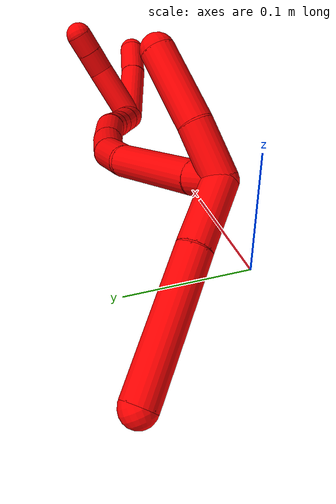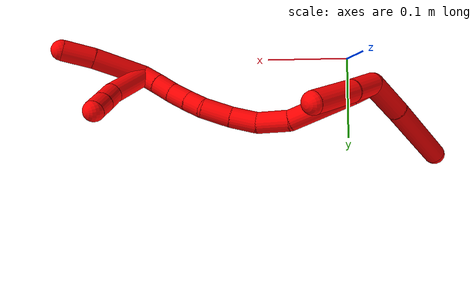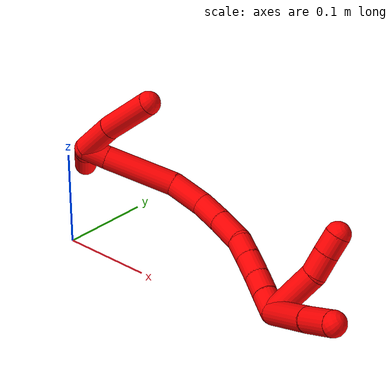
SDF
<sdf version="1.7">
 <world name="default">
  <model name="photoneo_s_sensor">
   <static>1</static>
   <pose>0 0 2 1.57079 1.57079 3.14159</pose>
   <link name="link">
    <inertial><mass>0.1</mass></inertial>
    <sensor name="sensor" type="depth">
     <update_rate>30</update_rate>
     <camera>
      <horizontal_fov>1.22</horizontal_fov>
      <image><width>1920</width><height>1200</height><format>B8G8R8</format></image>
      <clip><near>0.1</near><far>4</far></clip>
      <depth_camera><output>points</output></depth_camera>
     </camera>
     <plugin name="camera_plugin" filename="libgazebo_ros_depth_camera.so">
      <baseline>0.2</baseline>
      <alwaysOn>1</alwaysOn>
      <updateRate>0.0</updateRate>
      <cameraName>camera_ir</cameraName>
      <imageTopicName>/camera/color/image_raw</imageTopicName>
      <cameraInfoTopicName>/camera/color/camera_info</cameraInfoTopicName>
      <depthImageTopicName>/camera/depth/image_raw</depthImageTopicName>
      <depthImageCameraInfoTopicName>/camera/depth/camera_info</depthImageCameraInfoTopicName>
      <pointCloudTopicName>/camera/depth/points</pointCloudTopicName>
      <frameName>fr_optical</frameName>
      <pointCloudCutoff>0.1</pointCloudCutoff>
      <pointCloudCutoffMax>2.0</pointCloudCutoffMax>
      <distortionK1>0</distortionK1>
      <distortionK2>0</distortionK2>
      <distortionK3>0</distortionK3>
      <distortionT1>0</distortionT1>
      <distortionT2>0</distortionT2>
      <CxPrime>0</CxPrime>
      <Cx>0</Cx>
      <Cy>0</Cy>
      <focalLength>0</focalLength>
      <hackBaseline>0</hackBaseline>
     </plugin>
    </sensor>
   </link>
  </model>
  <model name="bin">
   <static>1</static>
   <link name="bottom">
    <collision name="collision-bottom">
     <pose>0 0 -0.01 0 -0 0</pose>
     <geometry><box><size>0.8 0.6 0.02</size></box></geometry>
     <surface>
      <friction><ode><mu>100</mu><mu2>100</mu2></ode></friction>
      <contact><collide_bitmask>65535</collide_bitmask></contact>
     </surface>
    </collision>
   </link>
   <link name="west_wall">
    <collision name="collision-west_wall">
     <pose>-0.41 0 0.1 0 -0 0</pose>
     <geometry><box><size>0.02 0.6 0.2</size></box></geometry>
     <surface>
      <friction><ode><mu>100</mu><mu2>100</mu2></ode></friction>
      <contact><collide_bitmask>65535</collide_bitmask></contact>
     </surface>
    </collision>
   </link>
   <link name="east_wall">
    <collision name="collision-east_wall">
     <pose>0.41 0 0.1 0 -0 0</pose>
     <geometry><box><size>0.02 0.6 0.2</size></box></geometry>
     <surface>
      <friction><ode><mu>100</mu><mu2>100</mu2></ode></friction>
      <contact><collide_bitmask>65535</collide_bitmask></contact>
     </surface>
    </collision>
   </link>
   <link name="south_wall">
    <collision name="collision-south_wall">
     <pose>0 -0.31 0.1 0 -0 0</pose>
     <geometry><box><size>0.8 0.02 0.2</size></box></geometry>
     <surface>
      <friction><ode><mu>100</mu><mu2>100</mu2></ode></friction>
      <contact><collide_bitmask>65535</collide_bitmask></contact>
     </surface>
    </collision>
   </link>
   <link name="north_wall">
    <collision name="collision-north_wall">
     <pose>0 0.31 0.1 0 -0 0</pose>
     <geometry><box><size>0.8 0.02 0.2</size></box></geometry>
     <surface>
      <friction><ode><mu>100</mu><mu2>100</mu2></ode></friction>
      <contact><collide_bitmask>65535</collide_bitmask></contact>
     </surface>
    </collision>
   </link>
  </model>
  <model name="2">
   <static>0</static>
   <link name="2">
    <collision name="collision-cylinder-e_1_2_8">
     <pose>-0.009824 0.016204 -0.017017 -2.38064 -0.39598 0.92984</pose>
     <geometry><cylinder><radius>0.0125</radius><length>0.050938</length></cylinder></geometry>
     <surface>
      <friction><ode><mu>1.16</mu><mu2>1.16</mu2><slip1>0</slip1><slip2>0</slip2></ode></friction>
      <contact><ode><kp>1e+06</kp><kd>1</kd><max_vel>0</max_vel><min_depth>0.001</min_depth></ode></contact>
     </surface>
    </collision>
    <visual name="visual-cylinder-e_1_2_8">
     <pose>-0.009824 0.016204 -0.017017 -2.38064 -0.39598 0.92984</pose>
     <geometry><cylinder><radius>0.0125</radius><length>0.050938</length></cylinder></geometry>
     <material><ambient>1 0 0 1</ambient></material>
    </visual>
    <collision name="collision-cylinder-e_2_8_6">
     <pose>-0.034587 0.064252 -0.068907 -2.40159 -0.306385 0.7577</pose>
     <geometry><cylinder><radius>0.0125</radius><length>0.099062</length></cylinder></geometry>
     <surface>
      <friction><ode><mu>1.16</mu><mu2>1.16</mu2><slip1>0</slip1><slip2>0</slip2></ode></friction>
      <contact><ode><kp>1e+06</kp><kd>1</kd><max_vel>0</max_vel><min_depth>0.001</min_depth></ode></contact>
     </surface>
    </collision>
    <visual name="visual-cylinder-e_2_8_6">
     <pose>-0.034587 0.064252 -0.068907 -2.40159 -0.306385 0.7577</pose>
     <geometry><cylinder><radius>0.0125</radius><length>0.099062</length></cylinder></geometry>
     <material><ambient>1 0 0 1</ambient></material>
    </visual>
    <collision name="collision-cylinder-e_1_2_9">
     <pose>-0.000274 -0.000113 0.020703 0.005443 -0.013214 -3.6e-05</pose>
     <geometry><cylinder><radius>0.0125</radius><length>0.041409</length></cylinder></geometry>
     <surface>
      <friction><ode><mu>1.16</mu><mu2>1.16</mu2><slip1>0</slip1><slip2>0</slip2></ode></friction>
      <contact><ode><kp>1e+06</kp><kd>1</kd><max_vel>0</max_vel><min_depth>0.001</min_depth></ode></contact>
     </surface>
    </collision>
    <visual name="visual-cylinder-e_1_2_9">
     <pose>-0.000274 -0.000113 0.020703 0.005443 -0.013214 -3.6e-05</pose>
     <geometry><cylinder><radius>0.0125</radius><length>0.041409</length></cylinder></geometry>
     <material><ambient>1 0 0 1</ambient></material>
    </visual>
    <collision name="collision-cylinder-e_2_9_5">
     <pose>0.002328 0.001078 0.07053 -0.044728 0.098308 -0.002201</pose>
     <geometry><cylinder><radius>0.0125</radius><length>0.058591</length></cylinder></geometry>
     <surface>
      <friction><ode><mu>1.16</mu><mu2>1.16</mu2><slip1>0</slip1><slip2>0</slip2></ode></friction>
      <contact><ode><kp>1e+06</kp><kd>1</kd><max_vel>0</max_vel><min_depth>0.001</min_depth></ode></contact>
     </surface>
    </collision>
    <visual name="visual-cylinder-e_2_9_5">
     <pose>0.002328 0.001078 0.07053 -0.044728 0.098308 -0.002201</pose>
     <geometry><cylinder><radius>0.0125</radius><length>0.058591</length></cylinder></geometry>
     <material><ambient>1 0 0 1</ambient></material>
    </visual>
    <collision name="collision-cylinder-e_1_2_10">
     <pose>0.007803 0.007727 0.005297 -0.969864 0.694466 -0.376839</pose>
     <geometry><cylinder><radius>0.0125</radius><length>0.024384</length></cylinder></geometry>
     <surface>
      <friction><ode><mu>1.16</mu><mu2>1.16</mu2><slip1>0</slip1><slip2>0</slip2></ode></friction>
      <contact><ode><kp>1e+06</kp><kd>1</kd><max_vel>0</max_vel><min_depth>0.001</min_depth></ode></contact>
     </surface>
    </collision>
    <visual name="visual-cylinder-e_1_2_10">
     <pose>0.007803 0.007727 0.005297 -0.969864 0.694466 -0.376839</pose>
     <geometry><cylinder><radius>0.0125</radius><length>0.024384</length></cylinder></geometry>
     <material><ambient>1 0 0 1</ambient></material>
    </visual>
    <collision name="collision-cylinder-e_2_10_11">
     <pose>0.040429 0.037266 0.030129 -0.840429 0.703208 -0.324947</pose>
     <geometry><cylinder><radius>0.0125</radius><length>0.076775</length></cylinder></geometry>
     <surface>
      <friction><ode><mu>1.16</mu><mu2>1.16</mu2><slip1>0</slip1><slip2>0</slip2></ode></friction>
      <contact><ode><kp>1e+06</kp><kd>1</kd><max_vel>0</max_vel><min_depth>0.001</min_depth></ode></contact>
     </surface>
    </collision>
    <visual name="visual-cylinder-e_2_10_11">
     <pose>0.040429 0.037266 0.030129 -0.840429 0.703208 -0.324947</pose>
     <geometry><cylinder><radius>0.0125</radius><length>0.076775</length></cylinder></geometry>
     <material><ambient>1 0 0 1</ambient></material>
    </visual>
    <collision name="collision-cylinder-e_3_11_12">
     <pose>0.081496 0.065028 0.058459 -0.59471 0.991791 -0.328571</pose>
     <geometry><cylinder><radius>0.0125</radius><length>0.038812</length></cylinder></geometry>
     <surface>
      <friction><ode><mu>1.16</mu><mu2>1.16</mu2><slip1>0</slip1><slip2>0</slip2></ode></friction>
      <contact><ode><kp>1e+06</kp><kd>1</kd><max_vel>0</max_vel><min_depth>0.001</min_depth></ode></contact>
     </surface>
    </collision>
    <visual name="visual-cylinder-e_3_11_12">
     <pose>0.081496 0.065028 0.058459 -0.59471 0.991791 -0.328571</pose>
     <geometry><cylinder><radius>0.0125</radius><length>0.038812</length></cylinder></geometry>
     <material><ambient>1 0 0 1</ambient></material>
    </visual>
    <collision name="collision-cylinder-e_4_12_13">
     <pose>0.111843 0.071053 0.075143 -0.00963 1.06079 -0.005648</pose>
     <geometry><cylinder><radius>0.0125</radius><length>0.03232</length></cylinder></geometry>
     <surface>
      <friction><ode><mu>1.16</mu><mu2>1.16</mu2><slip1>0</slip1><slip2>0</slip2></ode></friction>
      <contact><ode><kp>1e+06</kp><kd>1</kd><max_vel>0</max_vel><min_depth>0.001</min_depth></ode></contact>
     </surface>
    </collision>
    <visual name="visual-cylinder-e_4_12_13">
     <pose>0.111843 0.071053 0.075143 -0.00963 1.06079 -0.005648</pose>
     <geometry><cylinder><radius>0.0125</radius><length>0.03232</length></cylinder></geometry>
     <material><ambient>1 0 0 1</ambient></material>
    </visual>
    <collision name="collision-cylinder-e_5_13_14">
     <pose>0.141267 0.069271 0.091727 0.210543 1.04495 0.121541</pose>
     <geometry><cylinder><radius>0.0125</radius><length>0.035429</length></cylinder></geometry>
     <surface>
      <friction><ode><mu>1.16</mu><mu2>1.16</mu2><slip1>0</slip1><slip2>0</slip2></ode></friction>
      <contact><ode><kp>1e+06</kp><kd>1</kd><max_vel>0</max_vel><min_depth>0.001</min_depth></ode></contact>
     </surface>
    </collision>
    <visual name="visual-cylinder-e_5_13_14">
     <pose>0.141267 0.069271 0.091727 0.210543 1.04495 0.121541</pose>
     <geometry><cylinder><radius>0.0125</radius><length>0.035429</length></cylinder></geometry>
     <material><ambient>1 0 0 1</ambient></material>
    </visual>
    <collision name="collision-cylinder-e_6_14_15">
     <pose>0.167272 0.066444 0.102909 0.371558 1.32603 0.291471</pose>
     <geometry><cylinder><radius>0.0125</radius><length>0.022022</length></cylinder></geometry>
     <surface>
      <friction><ode><mu>1.16</mu><mu2>1.16</mu2><slip1>0</slip1><slip2>0</slip2></ode></friction>
      <contact><ode><kp>1e+06</kp><kd>1</kd><max_vel>0</max_vel><min_depth>0.001</min_depth></ode></contact>
     </surface>
    </collision>
    <visual name="visual-cylinder-e_6_14_15">
     <pose>0.167272 0.066444 0.102909 0.371558 1.32603 0.291471</pose>
     <geometry><cylinder><radius>0.0125</radius><length>0.022022</length></cylinder></geometry>
     <material><ambient>1 0 0 1</ambient></material>
    </visual>
    <collision name="collision-cylinder-e_7_15_16">
     <pose>0.189884 0.063895 0.108174 0.517039 1.309 0.400385</pose>
     <geometry><cylinder><radius>0.0125</radius><length>0.024699</length></cylinder></geometry>
     <surface>
      <friction><ode><mu>1.16</mu><mu2>1.16</mu2><slip1>0</slip1><slip2>0</slip2></ode></friction>
      <contact><ode><kp>1e+06</kp><kd>1</kd><max_vel>0</max_vel><min_depth>0.001</min_depth></ode></contact>
     </surface>
    </collision>
    <visual name="visual-cylinder-e_7_15_16">
     <pose>0.189884 0.063895 0.108174 0.517039 1.309 0.400385</pose>
     <geometry><cylinder><radius>0.0125</radius><length>0.024699</length></cylinder></geometry>
     <material><ambient>1 0 0 1</ambient></material>
    </visual>
    <collision name="collision-cylinder-e_8_16_17">
     <pose>0.21273 0.059536 0.114141 0.716783 1.20115 0.502309</pose>
     <geometry><cylinder><radius>0.0125</radius><length>0.023416</length></cylinder></geometry>
     <surface>
      <friction><ode><mu>1.16</mu><mu2>1.16</mu2><slip1>0</slip1><slip2>0</slip2></ode></friction>
      <contact><ode><kp>1e+06</kp><kd>1</kd><max_vel>0</max_vel><min_depth>0.001</min_depth></ode></contact>
     </surface>
    </collision>
    <visual name="visual-cylinder-e_8_16_17">
     <pose>0.21273 0.059536 0.114141 0.716783 1.20115 0.502309</pose>
     <geometry><cylinder><radius>0.0125</radius><length>0.023416</length></cylinder></geometry>
     <material><ambient>1 0 0 1</ambient></material>
    </visual>
    <collision name="collision-cylinder-e_9_17_1">
     <pose>0.234123 0.054597 0.120184 0.648052 1.24156 0.471413</pose>
     <geometry><cylinder><radius>0.0125</radius><length>0.022141</length></cylinder></geometry>
     <surface>
      <friction><ode><mu>1.16</mu><mu2>1.16</mu2><slip1>0</slip1><slip2>0</slip2></ode></friction>
      <contact><ode><kp>1e+06</kp><kd>1</kd><max_vel>0</max_vel><min_depth>0.001</min_depth></ode></contact>
     </surface>
    </collision>
    <visual name="visual-cylinder-e_9_17_1">
     <pose>0.234123 0.054597 0.120184 0.648052 1.24156 0.471413</pose>
     <geometry><cylinder><radius>0.0125</radius><length>0.022141</length></cylinder></geometry>
     <material><ambient>1 0 0 1</ambient></material>
    </visual>
    <collision name="collision-cylinder-e_1_1_18">
     <pose>0.237691 0.056225 0.149771 -0.140784 -0.25049 0.017754</pose>
     <geometry><cylinder><radius>0.0125</radius><length>0.05574</length></cylinder></geometry>
     <surface>
      <friction><ode><mu>1.16</mu><mu2>1.16</mu2><slip1>0</slip1><slip2>0</slip2></ode></friction>
      <contact><ode><kp>1e+06</kp><kd>1</kd><max_vel>0</max_vel><min_depth>0.001</min_depth></ode></contact>
     </surface>
    </collision>
    <visual name="visual-cylinder-e_1_1_18">
     <pose>0.237691 0.056225 0.149771 -0.140784 -0.25049 0.017754</pose>
     <geometry><cylinder><radius>0.0125</radius><length>0.05574</length></cylinder></geometry>
     <material><ambient>1 0 0 1</ambient></material>
    </visual>
    <collision name="collision-cylinder-e_2_18_19">
     <pose>0.224597 0.061182 0.186618 -0.115024 -0.545992 0.032238</pose>
     <geometry><cylinder><radius>0.0125</radius><length>0.023826</length></cylinder></geometry>
     <surface>
      <friction><ode><mu>1.16</mu><mu2>1.16</mu2><slip1>0</slip1><slip2>0</slip2></ode></friction>
      <contact><ode><kp>1e+06</kp><kd>1</kd><max_vel>0</max_vel><min_depth>0.001</min_depth></ode></contact>
     </surface>
    </collision>
    <visual name="visual-cylinder-e_2_18_19">
     <pose>0.224597 0.061182 0.186618 -0.115024 -0.545992 0.032238</pose>
     <geometry><cylinder><radius>0.0125</radius><length>0.023826</length></cylinder></geometry>
     <material><ambient>1 0 0 1</ambient></material>
    </visual>
    <collision name="collision-cylinder-e_3_19_4">
     <pose>0.213288 0.063437 0.205504 -0.123245 -0.525211 0.033169</pose>
     <geometry><cylinder><radius>0.0125</radius><length>0.020434</length></cylinder></geometry>
     <surface>
      <friction><ode><mu>1.16</mu><mu2>1.16</mu2><slip1>0</slip1><slip2>0</slip2></ode></friction>
      <contact><ode><kp>1e+06</kp><kd>1</kd><max_vel>0</max_vel><min_depth>0.001</min_depth></ode></contact>
     </surface>
    </collision>
    <visual name="visual-cylinder-e_3_19_4">
     <pose>0.213288 0.063437 0.205504 -0.123245 -0.525211 0.033169</pose>
     <geometry><cylinder><radius>0.0125</radius><length>0.020434</length></cylinder></geometry>
     <material><ambient>1 0 0 1</ambient></material>
    </visual>
    <collision name="collision-cylinder-e_1_1_20">
     <pose>0.260033 0.042035 0.148601 0.386401 0.509891 0.101886</pose>
     <geometry><cylinder><radius>0.0125</radius><length>0.063241</length></cylinder></geometry>
     <surface>
      <friction><ode><mu>1.16</mu><mu2>1.16</mu2><slip1>0</slip1><slip2>0</slip2></ode></friction>
      <contact><ode><kp>1e+06</kp><kd>1</kd><max_vel>0</max_vel><min_depth>0.001</min_depth></ode></contact>
     </surface>
    </collision>
    <visual name="visual-cylinder-e_1_1_20">
     <pose>0.260033 0.042035 0.148601 0.386401 0.509891 0.101886</pose>
     <geometry><cylinder><radius>0.0125</radius><length>0.063241</length></cylinder></geometry>
     <material><ambient>1 0 0 1</ambient></material>
    </visual>
    <collision name="collision-cylinder-e_2_20_3">
     <pose>0.284369 0.02716 0.189609 0.282008 0.505638 0.07331</pose>
     <geometry><cylinder><radius>0.0125</radius><length>0.036759</length></cylinder></geometry>
     <surface>
      <friction><ode><mu>1.16</mu><mu2>1.16</mu2><slip1>0</slip1><slip2>0</slip2></ode></friction>
      <contact><ode><kp>1e+06</kp><kd>1</kd><max_vel>0</max_vel><min_depth>0.001</min_depth></ode></contact>
     </surface>
    </collision>
    <visual name="visual-cylinder-e_2_20_3">
     <pose>0.284369 0.02716 0.189609 0.282008 0.505638 0.07331</pose>
     <geometry><cylinder><radius>0.0125</radius><length>0.036759</length></cylinder></geometry>
     <material><ambient>1 0 0 1</ambient></material>
    </visual>
    <collision name="collision-sphere-3">
     <pose>0.293271 0.022685 0.205054 0 -0 0</pose>
     <geometry><sphere><radius>0.0125</radius></sphere></geometry>
     <surface>
      <friction><ode><mu>1.16</mu><mu2>1.16</mu2><slip1>0</slip1><slip2>0</slip2></ode></friction>
      <contact><ode><kp>1e+06</kp><kd>1</kd><max_vel>0</max_vel><min_depth>0.001</min_depth></ode></contact>
     </surface>
    </collision>
    <visual name="visual-sphere-3">
     <pose>0.293271 0.022685 0.205054 0 -0 0</pose>
     <geometry><sphere><radius>0.0125</radius></sphere></geometry>
     <material><ambient>1 0 0 1</ambient></material>
    </visual>
    <collision name="collision-sphere-20">
     <pose>0.275466 0.031635 0.174165 0 -0 0</pose>
     <geometry><sphere><radius>0.0125</radius></sphere></geometry>
     <surface>
      <friction><ode><mu>1.16</mu><mu2>1.16</mu2><slip1>0</slip1><slip2>0</slip2></ode></friction>
      <contact><ode><kp>1e+06</kp><kd>1</kd><max_vel>0</max_vel><min_depth>0.001</min_depth></ode></contact>
     </surface>
    </collision>
    <visual name="visual-sphere-20">
     <pose>0.275466 0.031635 0.174165 0 -0 0</pose>
     <geometry><sphere><radius>0.0125</radius></sphere></geometry>
     <material><ambient>1 0 0 1</ambient></material>
    </visual>
    <collision name="collision-sphere-4">
     <pose>0.208165 0.064524 0.214277 0 -0 0</pose>
     <geometry><sphere><radius>0.0125</radius></sphere></geometry>
     <surface>
      <friction><ode><mu>1.16</mu><mu2>1.16</mu2><slip1>0</slip1><slip2>0</slip2></ode></friction>
      <contact><ode><kp>1e+06</kp><kd>1</kd><max_vel>0</max_vel><min_depth>0.001</min_depth></ode></contact>
     </surface>
    </collision>
    <visual name="visual-sphere-4">
     <pose>0.208165 0.064524 0.214277 0 -0 0</pose>
     <geometry><sphere><radius>0.0125</radius></sphere></geometry>
     <material><ambient>1 0 0 1</ambient></material>
    </visual>
    <collision name="collision-sphere-10">
     <pose>0.015605 0.015454 0.010594 0 -0 0</pose>
     <geometry><sphere><radius>0.0125</radius></sphere></geometry>
     <surface>
      <friction><ode><mu>1.16</mu><mu2>1.16</mu2><slip1>0</slip1><slip2>0</slip2></ode></friction>
      <contact><ode><kp>1e+06</kp><kd>1</kd><max_vel>0</max_vel><min_depth>0.001</min_depth></ode></contact>
     </surface>
    </collision>
    <visual name="visual-sphere-10">
     <pose>0.015605 0.015454 0.010594 0 -0 0</pose>
     <geometry><sphere><radius>0.0125</radius></sphere></geometry>
     <material><ambient>1 0 0 1</ambient></material>
    </visual>
    <collision name="collision-sphere-5">
     <pose>0.005203 0.002382 0.099655 0 -0 0</pose>
     <geometry><sphere><radius>0.0125</radius></sphere></geometry>
     <surface>
      <friction><ode><mu>1.16</mu><mu2>1.16</mu2><slip1>0</slip1><slip2>0</slip2></ode></friction>
      <contact><ode><kp>1e+06</kp><kd>1</kd><max_vel>0</max_vel><min_depth>0.001</min_depth></ode></contact>
     </surface>
    </collision>
    <visual name="visual-sphere-5">
     <pose>0.005203 0.002382 0.099655 0 -0 0</pose>
     <geometry><sphere><radius>0.0125</radius></sphere></geometry>
     <material><ambient>1 0 0 1</ambient></material>
    </visual>
    <collision name="collision-sphere-6">
     <pose>-0.049526 0.096095 -0.103781 0 -0 0</pose>
     <geometry><sphere><radius>0.0125</radius></sphere></geometry>
     <surface>
      <friction><ode><mu>1.16</mu><mu2>1.16</mu2><slip1>0</slip1><slip2>0</slip2></ode></friction>
      <contact><ode><kp>1e+06</kp><kd>1</kd><max_vel>0</max_vel><min_depth>0.001</min_depth></ode></contact>
     </surface>
    </collision>
    <visual name="visual-sphere-6">
     <pose>-0.049526 0.096095 -0.103781 0 -0 0</pose>
     <geometry><sphere><radius>0.0125</radius></sphere></geometry>
     <material><ambient>1 0 0 1</ambient></material>
    </visual>
    <collision name="collision-sphere-9">
     <pose>-0.000547 -0.000225 0.041405 0 -0 0</pose>
     <geometry><sphere><radius>0.0125</radius></sphere></geometry>
     <surface>
      <friction><ode><mu>1.16</mu><mu2>1.16</mu2><slip1>0</slip1><slip2>0</slip2></ode></friction>
      <contact><ode><kp>1e+06</kp><kd>1</kd><max_vel>0</max_vel><min_depth>0.001</min_depth></ode></contact>
     </surface>
    </collision>
    <visual name="visual-sphere-9">
     <pose>-0.000547 -0.000225 0.041405 0 -0 0</pose>
     <geometry><sphere><radius>0.0125</radius></sphere></geometry>
     <material><ambient>1 0 0 1</ambient></material>
    </visual>
    <collision name="collision-sphere-2">
     <geometry><sphere><radius>0.0125</radius></sphere></geometry>
     <surface>
      <friction><ode><mu>1.16</mu><mu2>1.16</mu2><slip1>0</slip1><slip2>0</slip2></ode></friction>
      <contact><ode><kp>1e+06</kp><kd>1</kd><max_vel>0</max_vel><min_depth>0.001</min_depth></ode></contact>
     </surface>
    </collision>
    <visual name="visual-sphere-2">
     <geometry><sphere><radius>0.0125</radius></sphere></geometry>
     <material><ambient>1 0 0 1</ambient></material>
    </visual>
    <collision name="collision-sphere-19">
     <pose>0.218411 0.06235 0.196732 0 -0 0</pose>
     <geometry><sphere><radius>0.0125</radius></sphere></geometry>
     <surface>
      <friction><ode><mu>1.16</mu><mu2>1.16</mu2><slip1>0</slip1><slip2>0</slip2></ode></friction>
      <contact><ode><kp>1e+06</kp><kd>1</kd><max_vel>0</max_vel><min_depth>0.001</min_depth></ode></contact>
     </surface>
    </collision>
    <visual name="visual-sphere-19">
     <pose>0.218411 0.06235 0.196732 0 -0 0</pose>
     <geometry><sphere><radius>0.0125</radius></sphere></geometry>
     <material><ambient>1 0 0 1</ambient></material>
    </visual>
    <collision name="collision-sphere-8">
     <pose>-0.019647 0.032409 -0.034034 0 -0 0</pose>
     <geometry><sphere><radius>0.0125</radius></sphere></geometry>
     <surface>
      <friction><ode><mu>1.16</mu><mu2>1.16</mu2><slip1>0</slip1><slip2>0</slip2></ode></friction>
      <contact><ode><kp>1e+06</kp><kd>1</kd><max_vel>0</max_vel><min_depth>0.001</min_depth></ode></contact>
     </surface>
    </collision>
    <visual name="visual-sphere-8">
     <pose>-0.019647 0.032409 -0.034034 0 -0 0</pose>
     <geometry><sphere><radius>0.0125</radius></sphere></geometry>
     <material><ambient>1 0 0 1</ambient></material>
    </visual>
    <collision name="collision-sphere-11">
     <pose>0.065253 0.059079 0.049663 0 -0 0</pose>
     <geometry><sphere><radius>0.0125</radius></sphere></geometry>
     <surface>
      <friction><ode><mu>1.16</mu><mu2>1.16</mu2><slip1>0</slip1><slip2>0</slip2></ode></friction>
      <contact><ode><kp>1e+06</kp><kd>1</kd><max_vel>0</max_vel><min_depth>0.001</min_depth></ode></contact>
     </surface>
    </collision>
    <visual name="visual-sphere-11">
     <pose>0.065253 0.059079 0.049663 0 -0 0</pose>
     <geometry><sphere><radius>0.0125</radius></sphere></geometry>
     <material><ambient>1 0 0 1</ambient></material>
    </visual>
    <collision name="collision-sphere-12">
     <pose>0.097739 0.070977 0.067254 0 -0 0</pose>
     <geometry><sphere><radius>0.0125</radius></sphere></geometry>
     <surface>
      <friction><ode><mu>1.16</mu><mu2>1.16</mu2><slip1>0</slip1><slip2>0</slip2></ode></friction>
      <contact><ode><kp>1e+06</kp><kd>1</kd><max_vel>0</max_vel><min_depth>0.001</min_depth></ode></contact>
     </surface>
    </collision>
    <visual name="visual-sphere-12">
     <pose>0.097739 0.070977 0.067254 0 -0 0</pose>
     <geometry><sphere><radius>0.0125</radius></sphere></geometry>
     <material><ambient>1 0 0 1</ambient></material>
    </visual>
    <collision name="collision-sphere-13">
     <pose>0.125946 0.071129 0.083032 0 -0 0</pose>
     <geometry><sphere><radius>0.0125</radius></sphere></geometry>
     <surface>
      <friction><ode><mu>1.16</mu><mu2>1.16</mu2><slip1>0</slip1><slip2>0</slip2></ode></friction>
      <contact><ode><kp>1e+06</kp><kd>1</kd><max_vel>0</max_vel><min_depth>0.001</min_depth></ode></contact>
     </surface>
    </collision>
    <visual name="visual-sphere-13">
     <pose>0.125946 0.071129 0.083032 0 -0 0</pose>
     <geometry><sphere><radius>0.0125</radius></sphere></geometry>
     <material><ambient>1 0 0 1</ambient></material>
    </visual>
    <collision name="collision-sphere-14">
     <pose>0.156589 0.067413 0.100423 0 -0 0</pose>
     <geometry><sphere><radius>0.0125</radius></sphere></geometry>
     <surface>
      <friction><ode><mu>1.16</mu><mu2>1.16</mu2><slip1>0</slip1><slip2>0</slip2></ode></friction>
      <contact><ode><kp>1e+06</kp><kd>1</kd><max_vel>0</max_vel><min_depth>0.001</min_depth></ode></contact>
     </surface>
    </collision>
    <visual name="visual-sphere-14">
     <pose>0.156589 0.067413 0.100423 0 -0 0</pose>
     <geometry><sphere><radius>0.0125</radius></sphere></geometry>
     <material><ambient>1 0 0 1</ambient></material>
    </visual>
    <collision name="collision-sphere-15">
     <pose>0.177955 0.065475 0.105395 0 -0 0</pose>
     <geometry><sphere><radius>0.0125</radius></sphere></geometry>
     <surface>
      <friction><ode><mu>1.16</mu><mu2>1.16</mu2><slip1>0</slip1><slip2>0</slip2></ode></friction>
      <contact><ode><kp>1e+06</kp><kd>1</kd><max_vel>0</max_vel><min_depth>0.001</min_depth></ode></contact>
     </surface>
    </collision>
    <visual name="visual-sphere-15">
     <pose>0.177955 0.065475 0.105395 0 -0 0</pose>
     <geometry><sphere><radius>0.0125</radius></sphere></geometry>
     <material><ambient>1 0 0 1</ambient></material>
    </visual>
    <collision name="collision-sphere-16">
     <pose>0.201813 0.062315 0.110952 0 -0 0</pose>
     <geometry><sphere><radius>0.0125</radius></sphere></geometry>
     <surface>
      <friction><ode><mu>1.16</mu><mu2>1.16</mu2><slip1>0</slip1><slip2>0</slip2></ode></friction>
      <contact><ode><kp>1e+06</kp><kd>1</kd><max_vel>0</max_vel><min_depth>0.001</min_depth></ode></contact>
     </surface>
    </collision>
    <visual name="visual-sphere-16">
     <pose>0.201813 0.062315 0.110952 0 -0 0</pose>
     <geometry><sphere><radius>0.0125</radius></sphere></geometry>
     <material><ambient>1 0 0 1</ambient></material>
    </visual>
    <collision name="collision-sphere-17">
     <pose>0.223647 0.056757 0.11733 0 -0 0</pose>
     <geometry><sphere><radius>0.0125</radius></sphere></geometry>
     <surface>
      <friction><ode><mu>1.16</mu><mu2>1.16</mu2><slip1>0</slip1><slip2>0</slip2></ode></friction>
      <contact><ode><kp>1e+06</kp><kd>1</kd><max_vel>0</max_vel><min_depth>0.001</min_depth></ode></contact>
     </surface>
    </collision>
    <visual name="visual-sphere-17">
     <pose>0.223647 0.056757 0.11733 0 -0 0</pose>
     <geometry><sphere><radius>0.0125</radius></sphere></geometry>
     <material><ambient>1 0 0 1</ambient></material>
    </visual>
    <collision name="collision-sphere-1">
     <pose>0.2446 0.052436 0.123038 0 -0 0</pose>
     <geometry><sphere><radius>0.0125</radius></sphere></geometry>
     <surface>
      <friction><ode><mu>1.16</mu><mu2>1.16</mu2><slip1>0</slip1><slip2>0</slip2></ode></friction>
      <contact><ode><kp>1e+06</kp><kd>1</kd><max_vel>0</max_vel><min_depth>0.001</min_depth></ode></contact>
     </surface>
    </collision>
    <visual name="visual-sphere-1">
     <pose>0.2446 0.052436 0.123038 0 -0 0</pose>
     <geometry><sphere><radius>0.0125</radius></sphere></geometry>
     <material><ambient>1 0 0 1</ambient></material>
    </visual>
    <collision name="collision-sphere-18">
     <pose>0.230783 0.060013 0.176504 0 -0 0</pose>
     <geometry><sphere><radius>0.0125</radius></sphere></geometry>
     <surface>
      <friction><ode><mu>1.16</mu><mu2>1.16</mu2><slip1>0</slip1><slip2>0</slip2></ode></friction>
      <contact><ode><kp>1e+06</kp><kd>1</kd><max_vel>0</max_vel><min_depth>0.001</min_depth></ode></contact>
     </surface>
    </collision>
    <visual name="visual-sphere-18">
     <pose>0.230783 0.060013 0.176504 0 -0 0</pose>
     <geometry><sphere><radius>0.0125</radius></sphere></geometry>
     <material><ambient>1 0 0 1</ambient></material>
    </visual>
    <inertial>
     <pose>0.106228 0.043683 0.068426 0 -0 0</pose>
     <mass>0.75</mass>
     <inertia>
      <ixx>0.000252</ixx>
      <ixy>0</ixy>
      <ixz>0</ixz>
      <iyy>0.000162</iyy>
      <iyz>0</iyz>
      <izz>-8.7e-05</izz>
     </inertia>
    </inertial>
   </link>
   <pose>-0.011 0.03532 0.091861 -0.504333 0.641499 -0.471646</pose>
  </model>
 </world>
</sdf>
